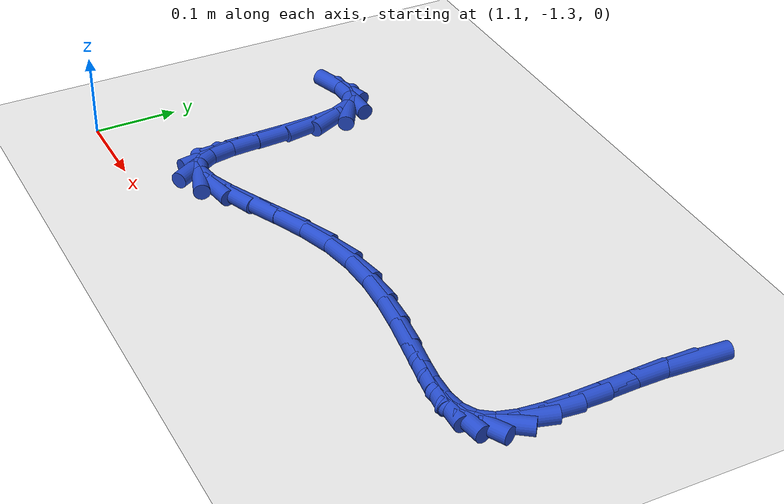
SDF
<sdf version="1.6">
 <world name="default">
  <model name="ground_plane">
   <static>1</static>
   <link name="link">
    <collision name="collision">
     <geometry><plane><normal>0 0 1</normal><size>100 100</size></plane></geometry>
     <surface><friction><ode><mu>100</mu><mu2>50</mu2></ode></friction></surface>
    </collision>
    <visual name="visual">
     <cast_shadows>0</cast_shadows>
     <geometry><plane><normal>0 0 1</normal><size>100 100</size></plane></geometry>
     <material>
      <script><uri>file://media/materials/scripts/gazebo.material</uri><name>Gazebo/WhiteGlow</name></script>
     </material>
    </visual>
   </link>
  </model>
  <model name="line">
   <link name="link_177">
    <pose>1.7960208288185961 -0.9119045865644883 0.01 0 1.57 1.5081185298215893</pose>
    <collision name="collision">
     <geometry><cylinder><radius>0.01</radius><length>0.08</length></cylinder></geometry>
    </collision>
    <visual name="visual">
     <material>
      <script><name>Gazebo/Blue</name><uri>file://media/materials/scripts/gazebo.material</uri></script>
     </material>
     <geometry><cylinder><radius>0.01</radius><length>0.08</length></cylinder></geometry>
    </visual>
   </link>
   <link name="link_178">
    <pose>1.7937998019596288 -0.947293795579264 0.01 0 1.57 -1.5659136477477522</pose>
    <collision name="collision">
     <geometry><cylinder><radius>0.01</radius><length>0.08</length></cylinder></geometry>
    </collision>
    <visual name="visual">
     <material>
      <script><name>Gazebo/Blue</name><uri>file://media/materials/scripts/gazebo.material</uri></script>
     </material>
     <geometry><cylinder><radius>0.01</radius><length>0.08</length></cylinder></geometry>
    </visual>
   </link>
   <link name="link_179">
    <pose>1.793977517230804 -0.9836905886471724 0.01 0 1.57 -1.5339668785440488</pose>
    <collision name="collision">
     <geometry><cylinder><radius>0.01</radius><length>0.08</length></cylinder></geometry>
    </collision>
    <visual name="visual">
     <material>
      <script><name>Gazebo/Blue</name><uri>file://media/materials/scripts/gazebo.material</uri></script>
     </material>
     <geometry><cylinder><radius>0.01</radius><length>0.08</length></cylinder></geometry>
    </visual>
   </link>
   <link name="link_180">
    <pose>1.7953087560682826 -1.0198202877092546 0.01 0 1.57 -1.534974186028492</pose>
    <collision name="collision">
     <geometry><cylinder><radius>0.01</radius><length>0.08</length></cylinder></geometry>
    </collision>
    <visual name="visual">
     <material>
      <script><name>Gazebo/Blue</name><uri>file://media/materials/scripts/gazebo.material</uri></script>
     </material>
     <geometry><cylinder><radius>0.01</radius><length>0.08</length></cylinder></geometry>
    </visual>
   </link>
   <link name="link_181">
    <pose>1.7965482999082274 -1.0544082147065532 0.01 0 1.57 1.5677316465795763</pose>
    <collision name="collision">
     <geometry><cylinder><radius>0.01</radius><length>0.08</length></cylinder></geometry>
    </collision>
    <visual name="visual">
     <material>
      <script><name>Gazebo/Blue</name><uri>file://media/materials/scripts/gazebo.material</uri></script>
     </material>
     <geometry><cylinder><radius>0.01</radius><length>0.08</length></cylinder></geometry>
    </visual>
   </link>
   <link name="link_182">
    <pose>1.7964509301868006 -1.0861796915801083 0.01 0 1.57 1.47429540650502</pose>
    <collision name="collision">
     <geometry><cylinder><radius>0.01</radius><length>0.08</length></cylinder></geometry>
    </collision>
    <visual name="visual">
     <material>
      <script><name>Gazebo/Blue</name><uri>file://media/materials/scripts/gazebo.material</uri></script>
     </material>
     <geometry><cylinder><radius>0.01</radius><length>0.08</length></cylinder></geometry>
    </visual>
   </link>
   <link name="link_183">
    <pose>1.7937714283401636 -1.1138600402709617 0.01 0 1.57 1.2870664689744482</pose>
    <collision name="collision">
     <geometry><cylinder><radius>0.01</radius><length>0.08</length></cylinder></geometry>
    </collision>
    <visual name="visual">
     <material>
      <script><name>Gazebo/Blue</name><uri>file://media/materials/scripts/gazebo.material</uri></script>
     </material>
     <geometry><cylinder><radius>0.01</radius><length>0.08</length></cylinder></geometry>
    </visual>
   </link>
   <link name="link_184">
    <pose>1.787264575804479 -1.136174582720156 0.01 0 1.57 0.9362996403786764</pose>
    <collision name="collision">
     <geometry><cylinder><radius>0.01</radius><length>0.08</length></cylinder></geometry>
    </collision>
    <visual name="visual">
     <material>
      <script><name>Gazebo/Blue</name><uri>file://media/materials/scripts/gazebo.material</uri></script>
     </material>
     <geometry><cylinder><radius>0.01</radius><length>0.08</length></cylinder></geometry>
    </visual>
   </link>
   <link name="link_185">
    <pose>1.7757062338056115 -1.1518783270159632 0.01 0 1.57 0.4829726621998311</pose>
    <collision name="collision">
     <geometry><cylinder><radius>0.01</radius><length>0.08</length></cylinder></geometry>
    </collision>
    <visual name="visual">
     <material>
      <script><name>Gazebo/Blue</name><uri>file://media/materials/scripts/gazebo.material</uri></script>
     </material>
     <geometry><cylinder><radius>0.01</radius><length>0.08</length></cylinder></geometry>
    </visual>
   </link>
   <link name="link_186">
    <pose>1.7586505089884588 -1.1608222650499727 0.01 0 1.57 0.1544146913565491</pose>
    <collision name="collision">
     <geometry><cylinder><radius>0.01</radius><length>0.08</length></cylinder></geometry>
    </collision>
    <visual name="visual">
     <material>
      <script><name>Gazebo/Blue</name><uri>file://media/materials/scripts/gazebo.material</uri></script>
     </material>
     <geometry><cylinder><radius>0.01</radius><length>0.08</length></cylinder></geometry>
    </visual>
   </link>
   <link name="link_187">
    <pose>1.7366392497616787 -1.1642484010454406 0.01 0 1.57 -0.028819096532792614</pose>
    <collision name="collision">
     <geometry><cylinder><radius>0.01</radius><length>0.08</length></cylinder></geometry>
    </collision>
    <visual name="visual">
     <material>
      <script><name>Gazebo/Blue</name><uri>file://media/materials/scripts/gazebo.material</uri></script>
     </material>
     <geometry><cylinder><radius>0.01</radius><length>0.08</length></cylinder></geometry>
    </visual>
   </link>
   <link name="link_188">
    <pose>1.7102780313705055 -1.1634884841557136 0.01 0 1.57 -0.11947962606344392</pose>
    <collision name="collision">
     <geometry><cylinder><radius>0.01</radius><length>0.08</length></cylinder></geometry>
    </collision>
    <visual name="visual">
     <material>
      <script><name>Gazebo/Blue</name><uri>file://media/materials/scripts/gazebo.material</uri></script>
     </material>
     <geometry><cylinder><radius>0.01</radius><length>0.08</length></cylinder></geometry>
    </visual>
   </link>
   <link name="link_189">
    <pose>1.6801724290601747 -1.1598742635341397 0.01 0 1.57 -0.15330308589852626</pose>
    <collision name="collision">
     <geometry><cylinder><radius>0.01</radius><length>0.08</length></cylinder></geometry>
    </collision>
    <visual name="visual">
     <material>
      <script><name>Gazebo/Blue</name><uri>file://media/materials/scripts/gazebo.material</uri></script>
     </material>
     <geometry><cylinder><radius>0.01</radius><length>0.08</length></cylinder></geometry>
    </visual>
   </link>
   <link name="link_190">
    <pose>1.6469280180759185 -1.1547374883340649 0.01 0 1.57 -0.14782189240481505</pose>
    <collision name="collision">
     <geometry><cylinder><radius>0.01</radius><length>0.08</length></cylinder></geometry>
    </collision>
    <visual name="visual">
     <material>
      <script><name>Gazebo/Blue</name><uri>file://media/materials/scripts/gazebo.material</uri></script>
     </material>
     <geometry><cylinder><radius>0.01</radius><length>0.08</length></cylinder></geometry>
    </visual>
   </link>
   <link name="link_191">
    <pose>1.6111503736629735 -1.1494099077088367 0.01 0 1.57 -0.11058278750437593</pose>
    <collision name="collision">
     <geometry><cylinder><radius>0.01</radius><length>0.08</length></cylinder></geometry>
    </collision>
    <visual name="visual">
     <material>
      <script><name>Gazebo/Blue</name><uri>file://media/materials/scripts/gazebo.material</uri></script>
     </material>
     <geometry><cylinder><radius>0.01</radius><length>0.08</length></cylinder></geometry>
    </visual>
   </link>
   <link name="link_192">
    <pose>1.5734450710665735 -1.145223270811802 0.01 0 1.57 -0.043888244035862625</pose>
    <collision name="collision">
     <geometry><cylinder><radius>0.01</radius><length>0.08</length></cylinder></geometry>
    </collision>
    <visual name="visual">
     <material>
      <script><name>Gazebo/Blue</name><uri>file://media/materials/scripts/gazebo.material</uri></script>
     </material>
     <geometry><cylinder><radius>0.01</radius><length>0.08</length></cylinder></geometry>
    </visual>
   </link>
   <link name="link_193">
    <pose>1.534417685531953 -1.143509326796308 0.01 0 1.57 0.05255079791620786</pose>
    <collision name="collision">
     <geometry><cylinder><radius>0.01</radius><length>0.08</length></cylinder></geometry>
    </collision>
    <visual name="visual">
     <material>
      <script><name>Gazebo/Blue</name><uri>file://media/materials/scripts/gazebo.material</uri></script>
     </material>
     <geometry><cylinder><radius>0.01</radius><length>0.08</length></cylinder></geometry>
    </visual>
   </link>
   <link name="link_194">
    <pose>1.4946737923043454 -1.1455998248157013 0.01 0 1.57 0.17934147224147745</pose>
    <collision name="collision">
     <geometry><cylinder><radius>0.01</radius><length>0.08</length></cylinder></geometry>
    </collision>
    <visual name="visual">
     <material>
      <script><name>Gazebo/Blue</name><uri>file://media/materials/scripts/gazebo.material</uri></script>
     </material>
     <geometry><cylinder><radius>0.01</radius><length>0.08</length></cylinder></geometry>
    </visual>
   </link>
   <link name="link_195">
    <pose>1.4548190681276285 -1.1528250589439124 0.01 0 1.57 0.3137528017062952</pose>
    <collision name="collision">
     <geometry><cylinder><radius>0.01</radius><length>0.08</length></cylinder></geometry>
    </collision>
    <visual name="visual">
     <material>
      <script><name>Gazebo/Blue</name><uri>file://media/materials/scripts/gazebo.material</uri></script>
     </material>
     <geometry><cylinder><radius>0.01</radius><length>0.08</length></cylinder></geometry>
    </visual>
   </link>
   <link name="link_196">
    <pose>1.4155247895002 -1.1655748884771544 0.01 0 1.57 0.40200954120544147</pose>
    <collision name="collision">
     <geometry><cylinder><radius>0.01</radius><length>0.08</length></cylinder></geometry>
    </collision>
    <visual name="visual">
     <material>
      <script><name>Gazebo/Blue</name><uri>file://media/materials/scripts/gazebo.material</uri></script>
     </material>
     <geometry><cylinder><radius>0.01</radius><length>0.08</length></cylinder></geometry>
    </visual>
   </link>
   <link name="link_197">
    <pose>1.377640616501927 -1.1816818746698623 0.01 0 1.57 0.4425035799006501</pose>
    <collision name="collision">
     <geometry><cylinder><radius>0.01</radius><length>0.08</length></cylinder></geometry>
    </collision>
    <visual name="visual">
     <material>
      <script><name>Gazebo/Blue</name><uri>file://media/materials/scripts/gazebo.material</uri></script>
     </material>
     <geometry><cylinder><radius>0.01</radius><length>0.08</length></cylinder></geometry>
    </visual>
   </link>
   <link name="link_198">
    <pose>1.3420462437713663 -1.1985480048553805 0.01 0 1.57 0.43398126106415313</pose>
    <collision name="collision">
     <geometry><cylinder><radius>0.01</radius><length>0.08</length></cylinder></geometry>
    </collision>
    <visual name="visual">
     <material>
      <script><name>Gazebo/Blue</name><uri>file://media/materials/scripts/gazebo.material</uri></script>
     </material>
     <geometry><cylinder><radius>0.01</radius><length>0.08</length></cylinder></geometry>
    </visual>
   </link>
   <link name="link_199">
    <pose>1.309621365947075 -1.2135752663670536 0.01 0 1.57 0.3572093889656007</pose>
    <collision name="collision">
     <geometry><cylinder><radius>0.01</radius><length>0.08</length></cylinder></geometry>
    </collision>
    <visual name="visual">
     <material>
      <script><name>Gazebo/Blue</name><uri>file://media/materials/scripts/gazebo.material</uri></script>
     </material>
     <geometry><cylinder><radius>0.01</radius><length>0.08</length></cylinder></geometry>
    </visual>
   </link>
   <link name="link_200">
    <pose>1.281245677667613 -1.224165646538225 0.01 0 1.57 0.15049400569390395</pose>
    <collision name="collision">
     <geometry><cylinder><radius>0.01</radius><length>0.08</length></cylinder></geometry>
    </collision>
    <visual name="visual">
     <material>
      <script><name>Gazebo/Blue</name><uri>file://media/materials/scripts/gazebo.material</uri></script>
     </material>
     <geometry><cylinder><radius>0.01</radius><length>0.08</length></cylinder></geometry>
    </visual>
   </link>
   <link name="link_201">
    <pose>1.2577988735715377 -1.2277211327022395 0.01 0 1.57 -0.331819974115183</pose>
    <collision name="collision">
     <geometry><cylinder><radius>0.01</radius><length>0.08</length></cylinder></geometry>
    </collision>
    <visual name="visual">
     <material>
      <script><name>Gazebo/Blue</name><uri>file://media/materials/scripts/gazebo.material</uri></script>
     </material>
     <geometry><cylinder><radius>0.01</radius><length>0.08</length></cylinder></geometry>
    </visual>
   </link>
   <link name="link_202">
    <pose>1.240160648297406 -1.2216437121924413 0.01 0 1.57 -1.0188802469114226</pose>
    <collision name="collision">
     <geometry><cylinder><radius>0.01</radius><length>0.08</length></cylinder></geometry>
    </collision>
    <visual name="visual">
     <material>
      <script><name>Gazebo/Blue</name><uri>file://media/materials/scripts/gazebo.material</uri></script>
     </material>
     <geometry><cylinder><radius>0.01</radius><length>0.08</length></cylinder></geometry>
    </visual>
   </link>
   <link name="link_203">
    <pose>1.2290690016125037 -1.203630325106873 0.01 0 1.57 -1.3784813097792665</pose>
    <collision name="collision">
     <geometry><cylinder><radius>0.01</radius><length>0.08</length></cylinder></geometry>
    </collision>
    <visual name="visual">
     <material>
      <script><name>Gazebo/Blue</name><uri>file://media/materials/scripts/gazebo.material</uri></script>
     </material>
     <geometry><cylinder><radius>0.01</radius><length>0.08</length></cylinder></geometry>
    </visual>
   </link>
   <link name="link_204">
    <pose>1.2235020862704866 -1.1750412180376788 0.01 0 1.57 -1.5070382794460246</pose>
    <collision name="collision">
     <geometry><cylinder><radius>0.01</radius><length>0.08</length></cylinder></geometry>
    </collision>
    <visual name="visual">
     <material>
      <script><name>Gazebo/Blue</name><uri>file://media/materials/scripts/gazebo.material</uri></script>
     </material>
     <geometry><cylinder><radius>0.01</radius><length>0.08</length></cylinder></geometry>
    </visual>
   </link>
   <link name="link_205">
    <pose>1.2212467871811512 -1.139716386779536 0.01 0 1.57 -1.5399125805249003</pose>
    <collision name="collision">
     <geometry><cylinder><radius>0.01</radius><length>0.08</length></cylinder></geometry>
    </collision>
    <visual name="visual">
     <material>
      <script><name>Gazebo/Blue</name><uri>file://media/materials/scripts/gazebo.material</uri></script>
     </material>
     <geometry><cylinder><radius>0.01</radius><length>0.08</length></cylinder></geometry>
    </visual>
   </link>
   <link name="link_206">
    <pose>1.2200674661057906 -1.1015427114275995 0.01 0 1.57 -1.5078946048450623</pose>
    <collision name="collision">
     <geometry><cylinder><radius>0.01</radius><length>0.08</length></cylinder></geometry>
    </collision>
    <visual name="visual">
     <material>
      <script><name>Gazebo/Blue</name><uri>file://media/materials/scripts/gazebo.material</uri></script>
     </material>
     <geometry><cylinder><radius>0.01</radius><length>0.08</length></cylinder></geometry>
    </visual>
   </link>
   <link name="link_207">
    <pose>1.2177284848056962 -1.0644070720770262 0.01 0 1.57 -1.3946180938584773</pose>
    <collision name="collision">
     <geometry><cylinder><radius>0.01</radius><length>0.08</length></cylinder></geometry>
    </collision>
    <visual name="visual">
     <material>
      <script><name>Gazebo/Blue</name><uri>file://media/materials/scripts/gazebo.material</uri></script>
     </material>
     <geometry><cylinder><radius>0.01</radius><length>0.08</length></cylinder></geometry>
    </visual>
   </link>
   <link name="link_208">
    <pose>1.2119942050421606 -1.03219634882297 0.01 0 1.57 -1.1186416580857492</pose>
    <collision name="collision">
     <geometry><cylinder><radius>0.01</radius><length>0.08</length></cylinder></geometry>
    </collision>
    <visual name="visual">
     <material>
      <script><name>Gazebo/Blue</name><uri>file://media/materials/scripts/gazebo.material</uri></script>
     </material>
     <geometry><cylinder><radius>0.01</radius><length>0.08</length></cylinder></geometry>
    </visual>
   </link>
   <link name="link_209">
    <pose>1.2006289885764772 -1.0087974217605895 0.01 0 1.57 -0.5321753424765115</pose>
    <collision name="collision">
     <geometry><cylinder><radius>0.01</radius><length>0.08</length></cylinder></geometry>
    </collision>
    <visual name="visual">
     <material>
      <script><name>Gazebo/Blue</name><uri>file://media/materials/scripts/gazebo.material</uri></script>
     </material>
     <geometry><cylinder><radius>0.01</radius><length>0.08</length></cylinder></geometry>
    </visual>
   </link>
   <link name="link_210">
    <pose>1.1816745621657898 -0.9976362427003159 0.01 0 1.57 0.020929946951408013</pose>
    <collision name="collision">
     <geometry><cylinder><radius>0.01</radius><length>0.08</length></cylinder></geometry>
    </collision>
    <visual name="visual">
     <material>
      <script><name>Gazebo/Blue</name><uri>file://media/materials/scripts/gazebo.material</uri></script>
     </material>
     <geometry><cylinder><radius>0.01</radius><length>0.08</length></cylinder></geometry>
    </visual>
   </link>
   <link name="link_211">
    <pose>1.155553018118263 -0.998183045078423 0.01 0 1.57 0.29768314760326153</pose>
    <collision name="collision">
     <geometry><cylinder><radius>0.01</radius><length>0.08</length></cylinder></geometry>
    </collision>
    <visual name="visual">
     <material>
      <script><name>Gazebo/Blue</name><uri>file://media/materials/scripts/gazebo.material</uri></script>
     </material>
     <geometry><cylinder><radius>0.01</radius><length>0.08</length></cylinder></geometry>
    </visual>
   </link>
  </model>
 </world>
</sdf>
